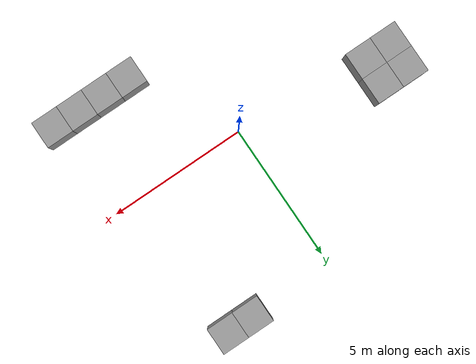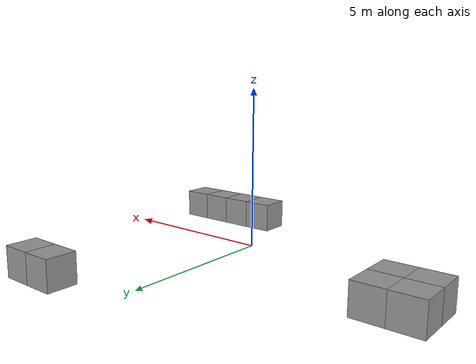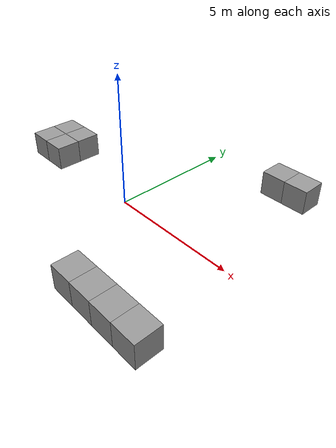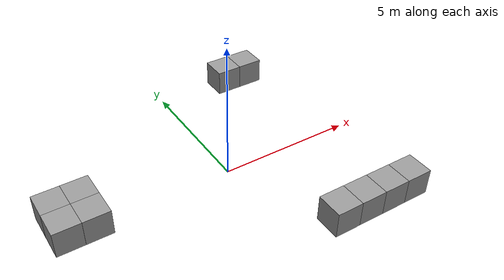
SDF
<?xml version='1.0'?>
<sdf version='1.6'>
  <model name='part1room'>
    <link name='link_0'>
      <pose frame=''>-5.9 1.4 0 0 -0 0</pose>
      <inertial>
        <mass>1</mass>
        <inertia>
          <ixx>0.166667</ixx>
          <ixy>0</ixy>
          <ixz>0</ixz>
          <iyy>0.166667</iyy>
          <iyz>0</iyz>
          <izz>0.166667</izz>
        </inertia>
        <pose frame=''>0 0 0 0 -0 0</pose>
      </inertial>
      <gravity>1</gravity>
      <self_collide>0</self_collide>
      <kinematic>0</kinematic>
      <visual name='visual'>
        <pose frame=''>0 0 0 0 -0 0</pose>
        <geometry>
          <box>
            <size>1 1 1</size>
          </box>
        </geometry>
        <material>
          <lighting>1</lighting>
          <script>
            <uri>file://media/materials/scripts/gazebo.material</uri>
            <name>Gazebo/Grey</name>
          </script>
          <ambient>0.3 0.3 0.3 1</ambient>
          <diffuse>0.7 0.7 0.7 1</diffuse>
          <specular>0.01 0.01 0.01 1</specular>
          <emissive>0 0 0 1</emissive>
          <shader type='vertex'>
            <normal_map>__default__</normal_map>
          </shader>
        </material>
        <cast_shadows>1</cast_shadows>
        <transparency>0</transparency>
      </visual>
      <collision name='collision'>
        <laser_retro>0</laser_retro>
        <max_contacts>10</max_contacts>
        <pose frame=''>0 0 0 0 -0 0</pose>
        <geometry>
          <box>
            <size>1 1 1</size>
          </box>
        </geometry>
        <surface>
          <friction>
            <ode>
              <mu>1</mu>
              <mu2>1</mu2>
              <fdir1>0 0 0</fdir1>
              <slip1>0</slip1>
              <slip2>0</slip2>
            </ode>
            <torsional>
              <coefficient>1</coefficient>
              <patch_radius>0</patch_radius>
              <surface_radius>0</surface_radius>
              <use_patch_radius>1</use_patch_radius>
              <ode>
                <slip>0</slip>
              </ode>
            </torsional>
          </friction>
          <bounce>
            <restitution_coefficient>0</restitution_coefficient>
            <threshold>1e+06</threshold>
          </bounce>
          <contact>
            <collide_without_contact>0</collide_without_contact>
            <collide_without_contact_bitmask>1</collide_without_contact_bitmask>
            <collide_bitmask>1</collide_bitmask>
            <ode>
              <soft_cfm>0</soft_cfm>
              <soft_erp>0.2</soft_erp>
              <kp>1e+13</kp>
              <kd>1</kd>
              <max_vel>0.01</max_vel>
              <min_depth>0</min_depth>
            </ode>
            <bullet>
              <split_impulse>1</split_impulse>
              <split_impulse_penetration_threshold>-0.01</split_impulse_penetration_threshold>
              <soft_cfm>0</soft_cfm>
              <soft_erp>0.2</soft_erp>
              <kp>1e+13</kp>
              <kd>1</kd>
            </bullet>
          </contact>
        </surface>
      </collision>
    </link>
    <link name='link_1'>
      <pose frame=''>-5.9 0.4 0 0 -0 0</pose>
      <inertial>
        <mass>1</mass>
        <inertia>
          <ixx>0.166667</ixx>
          <ixy>0</ixy>
          <ixz>0</ixz>
          <iyy>0.166667</iyy>
          <iyz>0</iyz>
          <izz>0.166667</izz>
        </inertia>
        <pose frame=''>0 0 0 0 -0 0</pose>
      </inertial>
      <gravity>1</gravity>
      <self_collide>0</self_collide>
      <kinematic>0</kinematic>
      <visual name='visual'>
        <pose frame=''>0 0 0 0 -0 0</pose>
        <geometry>
          <box>
            <size>1 1 1</size>
          </box>
        </geometry>
        <material>
          <lighting>1</lighting>
          <script>
            <uri>file://media/materials/scripts/gazebo.material</uri>
            <name>Gazebo/Grey</name>
          </script>
          <ambient>0.3 0.3 0.3 1</ambient>
          <diffuse>0.7 0.7 0.7 1</diffuse>
          <specular>0.01 0.01 0.01 1</specular>
          <emissive>0 0 0 1</emissive>
          <shader type='vertex'>
            <normal_map>__default__</normal_map>
          </shader>
        </material>
        <cast_shadows>1</cast_shadows>
        <transparency>0</transparency>
      </visual>
      <collision name='collision'>
        <laser_retro>0</laser_retro>
        <max_contacts>10</max_contacts>
        <pose frame=''>0 0 0 0 -0 0</pose>
        <geometry>
          <box>
            <size>1 1 1</size>
          </box>
        </geometry>
        <surface>
          <friction>
            <ode>
              <mu>1</mu>
              <mu2>1</mu2>
              <fdir1>0 0 0</fdir1>
              <slip1>0</slip1>
              <slip2>0</slip2>
            </ode>
            <torsional>
              <coefficient>1</coefficient>
              <patch_radius>0</patch_radius>
              <surface_radius>0</surface_radius>
              <use_patch_radius>1</use_patch_radius>
              <ode>
                <slip>0</slip>
              </ode>
            </torsional>
          </friction>
          <bounce>
            <restitution_coefficient>0</restitution_coefficient>
            <threshold>1e+06</threshold>
          </bounce>
          <contact>
            <collide_without_contact>0</collide_without_contact>
            <collide_without_contact_bitmask>1</collide_without_contact_bitmask>
            <collide_bitmask>1</collide_bitmask>
            <ode>
              <soft_cfm>0</soft_cfm>
              <soft_erp>0.2</soft_erp>
              <kp>1e+13</kp>
              <kd>1</kd>
              <max_vel>0.01</max_vel>
              <min_depth>0</min_depth>
            </ode>
            <bullet>
              <split_impulse>1</split_impulse>
              <split_impulse_penetration_threshold>-0.01</split_impulse_penetration_threshold>
              <soft_cfm>0</soft_cfm>
              <soft_erp>0.2</soft_erp>
              <kp>1e+13</kp>
              <kd>1</kd>
            </bullet>
          </contact>
        </surface>
      </collision>
    </link>
    <link name='link_10'>
      <pose frame=''>-4.9 0.4 0 0 -0 0</pose>
      <inertial>
        <mass>1</mass>
        <inertia>
          <ixx>0.166667</ixx>
          <ixy>0</ixy>
          <ixz>0</ixz>
          <iyy>0.166667</iyy>
          <iyz>0</iyz>
          <izz>0.166667</izz>
        </inertia>
        <pose frame=''>0 0 0 0 -0 0</pose>
      </inertial>
      <gravity>1</gravity>
      <self_collide>0</self_collide>
      <kinematic>0</kinematic>
      <visual name='visual'>
        <pose frame=''>0 0 0 0 -0 0</pose>
        <geometry>
          <box>
            <size>1 1 1</size>
          </box>
        </geometry>
        <material>
          <lighting>1</lighting>
          <script>
            <uri>file://media/materials/scripts/gazebo.material</uri>
            <name>Gazebo/Grey</name>
          </script>
          <ambient>0.3 0.3 0.3 1</ambient>
          <diffuse>0.7 0.7 0.7 1</diffuse>
          <specular>0.01 0.01 0.01 1</specular>
          <emissive>0 0 0 1</emissive>
          <shader type='vertex'>
            <normal_map>__default__</normal_map>
          </shader>
        </material>
        <cast_shadows>1</cast_shadows>
        <transparency>0</transparency>
      </visual>
      <collision name='collision'>
        <laser_retro>0</laser_retro>
        <max_contacts>10</max_contacts>
        <pose frame=''>0 0 0 0 -0 0</pose>
        <geometry>
          <box>
            <size>1 1 1</size>
          </box>
        </geometry>
        <surface>
          <friction>
            <ode>
              <mu>1</mu>
              <mu2>1</mu2>
              <fdir1>0 0 0</fdir1>
              <slip1>0</slip1>
              <slip2>0</slip2>
            </ode>
            <torsional>
              <coefficient>1</coefficient>
              <patch_radius>0</patch_radius>
              <surface_radius>0</surface_radius>
              <use_patch_radius>1</use_patch_radius>
              <ode>
                <slip>0</slip>
              </ode>
            </torsional>
          </friction>
          <bounce>
            <restitution_coefficient>0</restitution_coefficient>
            <threshold>1e+06</threshold>
          </bounce>
          <contact>
            <collide_without_contact>0</collide_without_contact>
            <collide_without_contact_bitmask>1</collide_without_contact_bitmask>
            <collide_bitmask>1</collide_bitmask>
            <ode>
              <soft_cfm>0</soft_cfm>
              <soft_erp>0.2</soft_erp>
              <kp>1e+13</kp>
              <kd>1</kd>
              <max_vel>0.01</max_vel>
              <min_depth>0</min_depth>
            </ode>
            <bullet>
              <split_impulse>1</split_impulse>
              <split_impulse_penetration_threshold>-0.01</split_impulse_penetration_threshold>
              <soft_cfm>0</soft_cfm>
              <soft_erp>0.2</soft_erp>
              <kp>1e+13</kp>
              <kd>1</kd>
            </bullet>
          </contact>
        </surface>
      </collision>
    </link>
    <link name='link_2'>
      <pose frame=''>-4.9 1.4 0 0 -0 0</pose>
      <inertial>
        <mass>1</mass>
        <inertia>
          <ixx>0.166667</ixx>
          <ixy>0</ixy>
          <ixz>0</ixz>
          <iyy>0.166667</iyy>
          <iyz>0</iyz>
          <izz>0.166667</izz>
        </inertia>
        <pose frame=''>0 0 0 0 -0 0</pose>
      </inertial>
      <gravity>1</gravity>
      <self_collide>0</self_collide>
      <kinematic>0</kinematic>
      <visual name='visual'>
        <pose frame=''>0 0 0 0 -0 0</pose>
        <geometry>
          <box>
            <size>1 1 1</size>
          </box>
        </geometry>
        <material>
          <lighting>1</lighting>
          <script>
            <uri>file://media/materials/scripts/gazebo.material</uri>
            <name>Gazebo/Grey</name>
          </script>
          <ambient>0.3 0.3 0.3 1</ambient>
          <diffuse>0.7 0.7 0.7 1</diffuse>
          <specular>0.01 0.01 0.01 1</specular>
          <emissive>0 0 0 1</emissive>
          <shader type='vertex'>
            <normal_map>__default__</normal_map>
          </shader>
        </material>
        <cast_shadows>1</cast_shadows>
        <transparency>0</transparency>
      </visual>
      <collision name='collision'>
        <laser_retro>0</laser_retro>
        <max_contacts>10</max_contacts>
        <pose frame=''>0 0 0 0 -0 0</pose>
        <geometry>
          <box>
            <size>1 1 1</size>
          </box>
        </geometry>
        <surface>
          <friction>
            <ode>
              <mu>1</mu>
              <mu2>1</mu2>
              <fdir1>0 0 0</fdir1>
              <slip1>0</slip1>
              <slip2>0</slip2>
            </ode>
            <torsional>
              <coefficient>1</coefficient>
              <patch_radius>0</patch_radius>
              <surface_radius>0</surface_radius>
              <use_patch_radius>1</use_patch_radius>
              <ode>
                <slip>0</slip>
              </ode>
            </torsional>
          </friction>
          <bounce>
            <restitution_coefficient>0</restitution_coefficient>
            <threshold>1e+06</threshold>
          </bounce>
          <contact>
            <collide_without_contact>0</collide_without_contact>
            <collide_without_contact_bitmask>1</collide_without_contact_bitmask>
            <collide_bitmask>1</collide_bitmask>
            <ode>
              <soft_cfm>0</soft_cfm>
              <soft_erp>0.2</soft_erp>
              <kp>1e+13</kp>
              <kd>1</kd>
              <max_vel>0.01</max_vel>
              <min_depth>0</min_depth>
            </ode>
            <bullet>
              <split_impulse>1</split_impulse>
              <split_impulse_penetration_threshold>-0.01</split_impulse_penetration_threshold>
              <soft_cfm>0</soft_cfm>
              <soft_erp>0.2</soft_erp>
              <kp>1e+13</kp>
              <kd>1</kd>
            </bullet>
          </contact>
        </surface>
      </collision>
    </link>
    <link name='link_4'>
      <pose frame=''>3.1 5.4 0 0 -0 0</pose>
      <inertial>
        <mass>1</mass>
        <inertia>
          <ixx>0.166667</ixx>
          <ixy>0</ixy>
          <ixz>0</ixz>
          <iyy>0.166667</iyy>
          <iyz>0</iyz>
          <izz>0.166667</izz>
        </inertia>
        <pose frame=''>0 0 0 0 -0 0</pose>
      </inertial>
      <gravity>1</gravity>
      <self_collide>0</self_collide>
      <kinematic>0</kinematic>
      <visual name='visual'>
        <pose frame=''>0 0 0 0 -0 0</pose>
        <geometry>
          <box>
            <size>1 1 1</size>
          </box>
        </geometry>
        <material>
          <lighting>1</lighting>
          <script>
            <uri>file://media/materials/scripts/gazebo.material</uri>
            <name>Gazebo/Grey</name>
          </script>
          <ambient>0.3 0.3 0.3 1</ambient>
          <diffuse>0.7 0.7 0.7 1</diffuse>
          <specular>0.01 0.01 0.01 1</specular>
          <emissive>0 0 0 1</emissive>
          <shader type='vertex'>
            <normal_map>__default__</normal_map>
          </shader>
        </material>
        <cast_shadows>1</cast_shadows>
        <transparency>0</transparency>
      </visual>
      <collision name='collision'>
        <laser_retro>0</laser_retro>
        <max_contacts>10</max_contacts>
        <pose frame=''>0 0 0 0 -0 0</pose>
        <geometry>
          <box>
            <size>1 1 1</size>
          </box>
        </geometry>
        <surface>
          <friction>
            <ode>
              <mu>1</mu>
              <mu2>1</mu2>
              <fdir1>0 0 0</fdir1>
              <slip1>0</slip1>
              <slip2>0</slip2>
            </ode>
            <torsional>
              <coefficient>1</coefficient>
              <patch_radius>0</patch_radius>
              <surface_radius>0</surface_radius>
              <use_patch_radius>1</use_patch_radius>
              <ode>
                <slip>0</slip>
              </ode>
            </torsional>
          </friction>
          <bounce>
            <restitution_coefficient>0</restitution_coefficient>
            <threshold>1e+06</threshold>
          </bounce>
          <contact>
            <collide_without_contact>0</collide_without_contact>
            <collide_without_contact_bitmask>1</collide_without_contact_bitmask>
            <collide_bitmask>1</collide_bitmask>
            <ode>
              <soft_cfm>0</soft_cfm>
              <soft_erp>0.2</soft_erp>
              <kp>1e+13</kp>
              <kd>1</kd>
              <max_vel>0.01</max_vel>
              <min_depth>0</min_depth>
            </ode>
            <bullet>
              <split_impulse>1</split_impulse>
              <split_impulse_penetration_threshold>-0.01</split_impulse_penetration_threshold>
              <soft_cfm>0</soft_cfm>
              <soft_erp>0.2</soft_erp>
              <kp>1e+13</kp>
              <kd>1</kd>
            </bullet>
          </contact>
        </surface>
      </collision>
    </link>
    <link name='link_5'>
      <pose frame=''>4.1 5.4 0 0 -0 0</pose>
      <inertial>
        <mass>1</mass>
        <inertia>
          <ixx>0.166667</ixx>
          <ixy>0</ixy>
          <ixz>0</ixz>
          <iyy>0.166667</iyy>
          <iyz>0</iyz>
          <izz>0.166667</izz>
        </inertia>
        <pose frame=''>0 0 0 0 -0 0</pose>
      </inertial>
      <gravity>1</gravity>
      <self_collide>0</self_collide>
      <kinematic>0</kinematic>
      <visual name='visual'>
        <pose frame=''>0 0 0 0 -0 0</pose>
        <geometry>
          <box>
            <size>1 1 1</size>
          </box>
        </geometry>
        <material>
          <lighting>1</lighting>
          <script>
            <uri>file://media/materials/scripts/gazebo.material</uri>
            <name>Gazebo/Grey</name>
          </script>
          <ambient>0.3 0.3 0.3 1</ambient>
          <diffuse>0.7 0.7 0.7 1</diffuse>
          <specular>0.01 0.01 0.01 1</specular>
          <emissive>0 0 0 1</emissive>
          <shader type='vertex'>
            <normal_map>__default__</normal_map>
          </shader>
        </material>
        <cast_shadows>1</cast_shadows>
        <transparency>0</transparency>
      </visual>
      <collision name='collision'>
        <laser_retro>0</laser_retro>
        <max_contacts>10</max_contacts>
        <pose frame=''>0 0 0 0 -0 0</pose>
        <geometry>
          <box>
            <size>1 1 1</size>
          </box>
        </geometry>
        <surface>
          <friction>
            <ode>
              <mu>1</mu>
              <mu2>1</mu2>
              <fdir1>0 0 0</fdir1>
              <slip1>0</slip1>
              <slip2>0</slip2>
            </ode>
            <torsional>
              <coefficient>1</coefficient>
              <patch_radius>0</patch_radius>
              <surface_radius>0</surface_radius>
              <use_patch_radius>1</use_patch_radius>
              <ode>
                <slip>0</slip>
              </ode>
            </torsional>
          </friction>
          <bounce>
            <restitution_coefficient>0</restitution_coefficient>
            <threshold>1e+06</threshold>
          </bounce>
          <contact>
            <collide_without_contact>0</collide_without_contact>
            <collide_without_contact_bitmask>1</collide_without_contact_bitmask>
            <collide_bitmask>1</collide_bitmask>
            <ode>
              <soft_cfm>0</soft_cfm>
              <soft_erp>0.2</soft_erp>
              <kp>1e+13</kp>
              <kd>1</kd>
              <max_vel>0.01</max_vel>
              <min_depth>0</min_depth>
            </ode>
            <bullet>
              <split_impulse>1</split_impulse>
              <split_impulse_penetration_threshold>-0.01</split_impulse_penetration_threshold>
              <soft_cfm>0</soft_cfm>
              <soft_erp>0.2</soft_erp>
              <kp>1e+13</kp>
              <kd>1</kd>
            </bullet>
          </contact>
        </surface>
      </collision>
    </link>
    <link name='link_6'>
      <pose frame=''>2.1 -3.6 0 0 -0 0</pose>
      <inertial>
        <mass>1</mass>
        <inertia>
          <ixx>0.166667</ixx>
          <ixy>0</ixy>
          <ixz>0</ixz>
          <iyy>0.166667</iyy>
          <iyz>0</iyz>
          <izz>0.166667</izz>
        </inertia>
        <pose frame=''>0 0 0 0 -0 0</pose>
      </inertial>
      <gravity>1</gravity>
      <self_collide>0</self_collide>
      <kinematic>0</kinematic>
      <visual name='visual'>
        <pose frame=''>0 0 0 0 -0 0</pose>
        <geometry>
          <box>
            <size>1 1 1</size>
          </box>
        </geometry>
        <material>
          <lighting>1</lighting>
          <script>
            <uri>file://media/materials/scripts/gazebo.material</uri>
            <name>Gazebo/Grey</name>
          </script>
          <ambient>0.3 0.3 0.3 1</ambient>
          <diffuse>0.7 0.7 0.7 1</diffuse>
          <specular>0.01 0.01 0.01 1</specular>
          <emissive>0 0 0 1</emissive>
          <shader type='vertex'>
            <normal_map>__default__</normal_map>
          </shader>
        </material>
        <cast_shadows>1</cast_shadows>
        <transparency>0</transparency>
      </visual>
      <collision name='collision'>
        <laser_retro>0</laser_retro>
        <max_contacts>10</max_contacts>
        <pose frame=''>0 0 0 0 -0 0</pose>
        <geometry>
          <box>
            <size>1 1 1</size>
          </box>
        </geometry>
        <surface>
          <friction>
            <ode>
              <mu>1</mu>
              <mu2>1</mu2>
              <fdir1>0 0 0</fdir1>
              <slip1>0</slip1>
              <slip2>0</slip2>
            </ode>
            <torsional>
              <coefficient>1</coefficient>
              <patch_radius>0</patch_radius>
              <surface_radius>0</surface_radius>
              <use_patch_radius>1</use_patch_radius>
              <ode>
                <slip>0</slip>
              </ode>
            </torsional>
          </friction>
          <bounce>
            <restitution_coefficient>0</restitution_coefficient>
            <threshold>1e+06</threshold>
          </bounce>
          <contact>
            <collide_without_contact>0</collide_without_contact>
            <collide_without_contact_bitmask>1</collide_without_contact_bitmask>
            <collide_bitmask>1</collide_bitmask>
            <ode>
              <soft_cfm>0</soft_cfm>
              <soft_erp>0.2</soft_erp>
              <kp>1e+13</kp>
              <kd>1</kd>
              <max_vel>0.01</max_vel>
              <min_depth>0</min_depth>
            </ode>
            <bullet>
              <split_impulse>1</split_impulse>
              <split_impulse_penetration_threshold>-0.01</split_impulse_penetration_threshold>
              <soft_cfm>0</soft_cfm>
              <soft_erp>0.2</soft_erp>
              <kp>1e+13</kp>
              <kd>1</kd>
            </bullet>
          </contact>
        </surface>
      </collision>
    </link>
    <link name='link_7'>
      <pose frame=''>5.1 -3.6 0 0 -0 0</pose>
      <inertial>
        <mass>1</mass>
        <inertia>
          <ixx>0.166667</ixx>
          <ixy>0</ixy>
          <ixz>0</ixz>
          <iyy>0.166667</iyy>
          <iyz>0</iyz>
          <izz>0.166667</izz>
        </inertia>
        <pose frame=''>0 0 0 0 -0 0</pose>
      </inertial>
      <gravity>1</gravity>
      <self_collide>0</self_collide>
      <kinematic>0</kinematic>
      <visual name='visual'>
        <pose frame=''>0 0 0 0 -0 0</pose>
        <geometry>
          <box>
            <size>1 1 1</size>
          </box>
        </geometry>
        <material>
          <lighting>1</lighting>
          <script>
            <uri>file://media/materials/scripts/gazebo.material</uri>
            <name>Gazebo/Grey</name>
          </script>
          <ambient>0.3 0.3 0.3 1</ambient>
          <diffuse>0.7 0.7 0.7 1</diffuse>
          <specular>0.01 0.01 0.01 1</specular>
          <emissive>0 0 0 1</emissive>
          <shader type='vertex'>
            <normal_map>__default__</normal_map>
          </shader>
        </material>
        <cast_shadows>1</cast_shadows>
        <transparency>0</transparency>
      </visual>
      <collision name='collision'>
        <laser_retro>0</laser_retro>
        <max_contacts>10</max_contacts>
        <pose frame=''>0 0 0 0 -0 0</pose>
        <geometry>
          <box>
            <size>1 1 1</size>
          </box>
        </geometry>
        <surface>
          <friction>
            <ode>
              <mu>1</mu>
              <mu2>1</mu2>
              <fdir1>0 0 0</fdir1>
              <slip1>0</slip1>
              <slip2>0</slip2>
            </ode>
            <torsional>
              <coefficient>1</coefficient>
              <patch_radius>0</patch_radius>
              <surface_radius>0</surface_radius>
              <use_patch_radius>1</use_patch_radius>
              <ode>
                <slip>0</slip>
              </ode>
            </torsional>
          </friction>
          <bounce>
            <restitution_coefficient>0</restitution_coefficient>
            <threshold>1e+06</threshold>
          </bounce>
          <contact>
            <collide_without_contact>0</collide_without_contact>
            <collide_without_contact_bitmask>1</collide_without_contact_bitmask>
            <collide_bitmask>1</collide_bitmask>
            <ode>
              <soft_cfm>0</soft_cfm>
              <soft_erp>0.2</soft_erp>
              <kp>1e+13</kp>
              <kd>1</kd>
              <max_vel>0.01</max_vel>
              <min_depth>0</min_depth>
            </ode>
            <bullet>
              <split_impulse>1</split_impulse>
              <split_impulse_penetration_threshold>-0.01</split_impulse_penetration_threshold>
              <soft_cfm>0</soft_cfm>
              <soft_erp>0.2</soft_erp>
              <kp>1e+13</kp>
              <kd>1</kd>
            </bullet>
          </contact>
        </surface>
      </collision>
    </link>
    <link name='link_8'>
      <pose frame=''>3.1 -3.6 0 0 -0 0</pose>
      <inertial>
        <mass>1</mass>
        <inertia>
          <ixx>0.166667</ixx>
          <ixy>0</ixy>
          <ixz>0</ixz>
          <iyy>0.166667</iyy>
          <iyz>0</iyz>
          <izz>0.166667</izz>
        </inertia>
        <pose frame=''>0 0 0 0 -0 0</pose>
      </inertial>
      <gravity>1</gravity>
      <self_collide>0</self_collide>
      <kinematic>0</kinematic>
      <visual name='visual'>
        <pose frame=''>0 0 0 0 -0 0</pose>
        <geometry>
          <box>
            <size>1 1 1</size>
          </box>
        </geometry>
        <material>
          <lighting>1</lighting>
          <script>
            <uri>file://media/materials/scripts/gazebo.material</uri>
            <name>Gazebo/Grey</name>
          </script>
          <ambient>0.3 0.3 0.3 1</ambient>
          <diffuse>0.7 0.7 0.7 1</diffuse>
          <specular>0.01 0.01 0.01 1</specular>
          <emissive>0 0 0 1</emissive>
          <shader type='vertex'>
            <normal_map>__default__</normal_map>
          </shader>
        </material>
        <cast_shadows>1</cast_shadows>
        <transparency>0</transparency>
      </visual>
      <collision name='collision'>
        <laser_retro>0</laser_retro>
        <max_contacts>10</max_contacts>
        <pose frame=''>0 0 0 0 -0 0</pose>
        <geometry>
          <box>
            <size>1 1 1</size>
          </box>
        </geometry>
        <surface>
          <friction>
            <ode>
              <mu>1</mu>
              <mu2>1</mu2>
              <fdir1>0 0 0</fdir1>
              <slip1>0</slip1>
              <slip2>0</slip2>
            </ode>
            <torsional>
              <coefficient>1</coefficient>
              <patch_radius>0</patch_radius>
              <surface_radius>0</surface_radius>
              <use_patch_radius>1</use_patch_radius>
              <ode>
                <slip>0</slip>
              </ode>
            </torsional>
          </friction>
          <bounce>
            <restitution_coefficient>0</restitution_coefficient>
            <threshold>1e+06</threshold>
          </bounce>
          <contact>
            <collide_without_contact>0</collide_without_contact>
            <collide_without_contact_bitmask>1</collide_without_contact_bitmask>
            <collide_bitmask>1</collide_bitmask>
            <ode>
              <soft_cfm>0</soft_cfm>
              <soft_erp>0.2</soft_erp>
              <kp>1e+13</kp>
              <kd>1</kd>
              <max_vel>0.01</max_vel>
              <min_depth>0</min_depth>
            </ode>
            <bullet>
              <split_impulse>1</split_impulse>
              <split_impulse_penetration_threshold>-0.01</split_impulse_penetration_threshold>
              <soft_cfm>0</soft_cfm>
              <soft_erp>0.2</soft_erp>
              <kp>1e+13</kp>
              <kd>1</kd>
            </bullet>
          </contact>
        </surface>
      </collision>
    </link>
    <link name='link_9'>
      <pose frame=''>4.1 -3.6 0 0 -0 0</pose>
      <inertial>
        <mass>1</mass>
        <inertia>
          <ixx>0.166667</ixx>
          <ixy>0</ixy>
          <ixz>0</ixz>
          <iyy>0.166667</iyy>
          <iyz>0</iyz>
          <izz>0.166667</izz>
        </inertia>
        <pose frame=''>0 0 0 0 -0 0</pose>
      </inertial>
      <gravity>1</gravity>
      <self_collide>0</self_collide>
      <kinematic>0</kinematic>
      <visual name='visual'>
        <pose frame=''>0 0 0 0 -0 0</pose>
        <geometry>
          <box>
            <size>1 1 1</size>
          </box>
        </geometry>
        <material>
          <lighting>1</lighting>
          <script>
            <uri>file://media/materials/scripts/gazebo.material</uri>
            <name>Gazebo/Grey</name>
          </script>
          <ambient>0.3 0.3 0.3 1</ambient>
          <diffuse>0.7 0.7 0.7 1</diffuse>
          <specular>0.01 0.01 0.01 1</specular>
          <emissive>0 0 0 1</emissive>
          <shader type='vertex'>
            <normal_map>__default__</normal_map>
          </shader>
        </material>
        <cast_shadows>1</cast_shadows>
        <transparency>0</transparency>
      </visual>
      <collision name='collision'>
        <laser_retro>0</laser_retro>
        <max_contacts>10</max_contacts>
        <pose frame=''>0 0 0 0 -0 0</pose>
        <geometry>
          <box>
            <size>1 1 1</size>
          </box>
        </geometry>
        <surface>
          <friction>
            <ode>
              <mu>1</mu>
              <mu2>1</mu2>
              <fdir1>0 0 0</fdir1>
              <slip1>0</slip1>
              <slip2>0</slip2>
            </ode>
            <torsional>
              <coefficient>1</coefficient>
              <patch_radius>0</patch_radius>
              <surface_radius>0</surface_radius>
              <use_patch_radius>1</use_patch_radius>
              <ode>
                <slip>0</slip>
              </ode>
            </torsional>
          </friction>
          <bounce>
            <restitution_coefficient>0</restitution_coefficient>
            <threshold>1e+06</threshold>
          </bounce>
          <contact>
            <collide_without_contact>0</collide_without_contact>
            <collide_without_contact_bitmask>1</collide_without_contact_bitmask>
            <collide_bitmask>1</collide_bitmask>
            <ode>
              <soft_cfm>0</soft_cfm>
              <soft_erp>0.2</soft_erp>
              <kp>1e+13</kp>
              <kd>1</kd>
              <max_vel>0.01</max_vel>
              <min_depth>0</min_depth>
            </ode>
            <bullet>
              <split_impulse>1</split_impulse>
              <split_impulse_penetration_threshold>-0.01</split_impulse_penetration_threshold>
              <soft_cfm>0</soft_cfm>
              <soft_erp>0.2</soft_erp>
              <kp>1e+13</kp>
              <kd>1</kd>
            </bullet>
          </contact>
        </surface>
      </collision>
    </link>
    <static>0</static>
    <allow_auto_disable>1</allow_auto_disable>
  </model>
</sdf>
